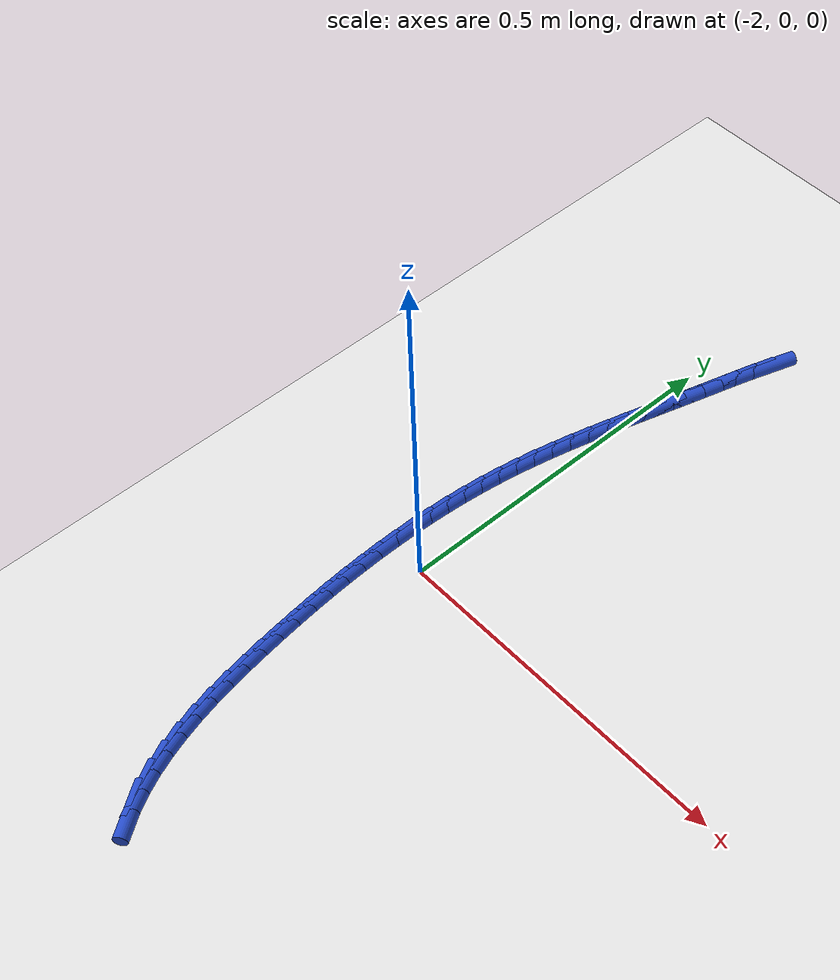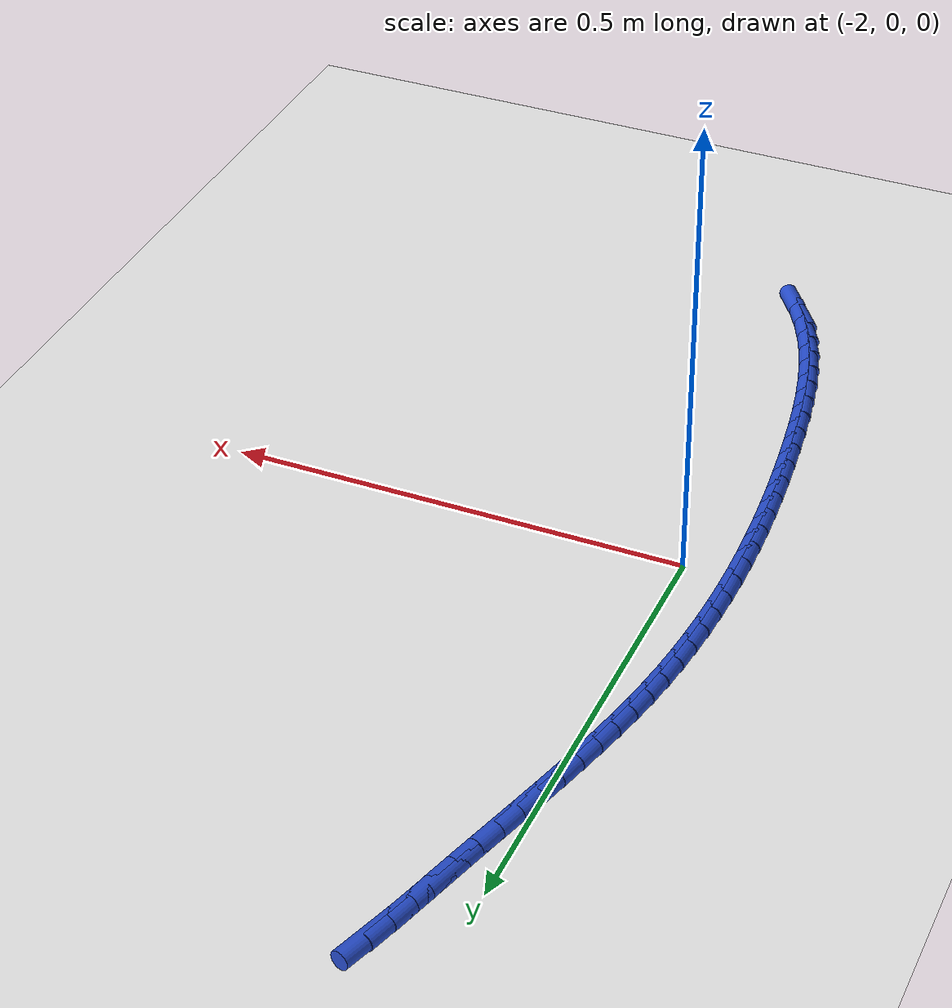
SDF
<sdf version="1.6">
 <world name="default">
  <model name="ground_plane">
   <static>1</static>
   <link name="link">
    <collision name="collision">
     <geometry><plane><normal>0 0 1</normal><size>100 100</size></plane></geometry>
     <surface><friction><ode><mu>100</mu><mu2>50</mu2></ode></friction></surface>
    </collision>
    <visual name="visual">
     <cast_shadows>0</cast_shadows>
     <geometry><plane><normal>0 0 1</normal><size>100 100</size></plane></geometry>
     <material>
      <script><uri>file://media/materials/scripts/gazebo.material</uri><name>Gazebo/WhiteGlow</name></script>
     </material>
    </visual>
   </link>
  </model>
  <model name="line">
   <link name="link_95">
    <pose>-1.9344998018746433 0.5902073375760196 0.01 0 1.57 1.254535012141452</pose>
    <collision name="collision">
     <geometry><cylinder><radius>0.01</radius><length>0.08</length></cylinder></geometry>
    </collision>
    <visual name="visual">
     <material>
      <script><name>Gazebo/Blue</name><uri>file://media/materials/scripts/gazebo.material</uri></script>
     </material>
     <geometry><cylinder><radius>0.01</radius><length>0.08</length></cylinder></geometry>
    </visual>
   </link>
   <link name="link_96">
    <pose>-1.9435953468730802 0.5624130615206323 0.01 0 1.57 1.2808719550416707</pose>
    <collision name="collision">
     <geometry><cylinder><radius>0.01</radius><length>0.08</length></cylinder></geometry>
    </collision>
    <visual name="visual">
     <material>
      <script><name>Gazebo/Blue</name><uri>file://media/materials/scripts/gazebo.material</uri></script>
     </material>
     <geometry><cylinder><radius>0.01</radius><length>0.08</length></cylinder></geometry>
    </visual>
   </link>
   <link name="link_97">
    <pose>-1.9520296461643625 0.5341413916835575 0.01 0 1.57 1.2942587560403869</pose>
    <collision name="collision">
     <geometry><cylinder><radius>0.01</radius><length>0.08</length></cylinder></geometry>
    </collision>
    <visual name="visual">
     <material>
      <script><name>Gazebo/Blue</name><uri>file://media/materials/scripts/gazebo.material</uri></script>
     </material>
     <geometry><cylinder><radius>0.01</radius><length>0.08</length></cylinder></geometry>
    </visual>
   </link>
   <link name="link_98">
    <pose>-1.9601114194759017 0.5056653233900984 0.01 0 1.57 1.2952131187065052</pose>
    <collision name="collision">
     <geometry><cylinder><radius>0.01</radius><length>0.08</length></cylinder></geometry>
    </collision>
    <visual name="visual">
     <material>
      <script><name>Gazebo/Blue</name><uri>file://media/materials/scripts/gazebo.material</uri></script>
     </material>
     <geometry><cylinder><radius>0.01</radius><length>0.08</length></cylinder></geometry>
    </visual>
   </link>
   <link name="link_99">
    <pose>-1.9681453239502498 0.4772547172447407 0.01 0 1.57 1.2901808839835676</pose>
    <collision name="collision">
     <geometry><cylinder><radius>0.01</radius><length>0.08</length></cylinder></geometry>
    </collision>
    <visual name="visual">
     <material>
      <script><name>Gazebo/Blue</name><uri>file://media/materials/scripts/gazebo.material</uri></script>
     </material>
     <geometry><cylinder><radius>0.01</radius><length>0.08</length></cylinder></geometry>
    </visual>
   </link>
   <link name="link_100">
    <pose>-1.9762733744664538 0.44905393786676234 0.01 0 1.57 1.2876578709535933</pose>
    <collision name="collision">
     <geometry><cylinder><radius>0.01</radius><length>0.08</length></cylinder></geometry>
    </collision>
    <visual name="visual">
     <material>
      <script><name>Gazebo/Blue</name><uri>file://media/materials/scripts/gazebo.material</uri></script>
     </material>
     <geometry><cylinder><radius>0.01</radius><length>0.08</length></cylinder></geometry>
    </visual>
   </link>
   <link name="link_101">
    <pose>-1.9844235423572956 0.4210421922765682 0.01 0 1.57 1.288280962994664</pose>
    <collision name="collision">
     <geometry><cylinder><radius>0.01</radius><length>0.08</length></cylinder></geometry>
    </collision>
    <visual name="visual">
     <material>
      <script><name>Gazebo/Blue</name><uri>file://media/materials/scripts/gazebo.material</uri></script>
     </material>
     <geometry><cylinder><radius>0.01</radius><length>0.08</length></cylinder></geometry>
    </visual>
   </link>
   <link name="link_102">
    <pose>-1.9925092124512216 0.3931874324388796 0.01 0 1.57 1.292104933015908</pose>
    <collision name="collision">
     <geometry><cylinder><radius>0.01</radius><length>0.08</length></cylinder></geometry>
    </collision>
    <visual name="visual">
     <material>
      <script><name>Gazebo/Blue</name><uri>file://media/materials/scripts/gazebo.material</uri></script>
     </material>
     <geometry><cylinder><radius>0.01</radius><length>0.08</length></cylinder></geometry>
    </visual>
   </link>
   <link name="link_103">
    <pose>-2.000443769576679 0.3654576103184168 0.01 0 1.57 1.2991810181899923</pose>
    <collision name="collision">
     <geometry><cylinder><radius>0.01</radius><length>0.08</length></cylinder></geometry>
    </collision>
    <visual name="visual">
     <material>
      <script><name>Gazebo/Blue</name><uri>file://media/materials/scripts/gazebo.material</uri></script>
     </material>
     <geometry><cylinder><radius>0.01</radius><length>0.08</length></cylinder></geometry>
    </visual>
   </link>
   <link name="link_104">
    <pose>-2.0081405985621137 0.33782067787990083 0.01 0 1.57 1.309555474394665</pose>
    <collision name="collision">
     <geometry><cylinder><radius>0.01</radius><length>0.08</length></cylinder></geometry>
    </collision>
    <visual name="visual">
     <material>
      <script><name>Gazebo/Blue</name><uri>file://media/materials/scripts/gazebo.material</uri></script>
     </material>
     <geometry><cylinder><radius>0.01</radius><length>0.08</length></cylinder></geometry>
    </visual>
   </link>
   <link name="link_105">
    <pose>-2.015513084235972 0.31024458708805186 0.01 0 1.57 1.3232670097337669</pose>
    <collision name="collision">
     <geometry><cylinder><radius>0.01</radius><length>0.08</length></cylinder></geometry>
    </collision>
    <visual name="visual">
     <material>
      <script><name>Gazebo/Blue</name><uri>file://media/materials/scripts/gazebo.material</uri></script>
     </material>
     <geometry><cylinder><radius>0.01</radius><length>0.08</length></cylinder></geometry>
    </visual>
   </link>
   <link name="link_106">
    <pose>-2.0224746114267 0.2826972899075911 0.01 0 1.57 1.3403430262106866</pose>
    <collision name="collision">
     <geometry><cylinder><radius>0.01</radius><length>0.08</length></cylinder></geometry>
    </collision>
    <visual name="visual">
     <material>
      <script><name>Gazebo/Blue</name><uri>file://media/materials/scripts/gazebo.material</uri></script>
     </material>
     <geometry><cylinder><radius>0.01</radius><length>0.08</length></cylinder></geometry>
    </visual>
   </link>
   <link name="link_107">
    <pose>-2.0289385649627443 0.255146738303239 0.01 0 1.57 1.3607946504472843</pose>
    <collision name="collision">
     <geometry><cylinder><radius>0.01</radius><length>0.08</length></cylinder></geometry>
    </collision>
    <visual name="visual">
     <material>
      <script><name>Gazebo/Blue</name><uri>file://media/materials/scripts/gazebo.material</uri></script>
     </material>
     <geometry><cylinder><radius>0.01</radius><length>0.08</length></cylinder></geometry>
    </visual>
   </link>
   <link name="link_108">
    <pose>-2.034818329672552 0.2275608842397157 0.01 0 1.57 1.384610621005117</pose>
    <collision name="collision">
     <geometry><cylinder><radius>0.01</radius><length>0.08</length></cylinder></geometry>
    </collision>
    <visual name="visual">
     <material>
      <script><name>Gazebo/Blue</name><uri>file://media/materials/scripts/gazebo.material</uri></script>
     </material>
     <geometry><cylinder><radius>0.01</radius><length>0.08</length></cylinder></geometry>
    </visual>
   </link>
   <link name="link_109">
    <pose>-2.0400272903845673 0.19990767968174253 0.01 0 1.57 1.411507171719653</pose>
    <collision name="collision">
     <geometry><cylinder><radius>0.01</radius><length>0.08</length></cylinder></geometry>
    </collision>
    <visual name="visual">
     <material>
      <script><name>Gazebo/Blue</name><uri>file://media/materials/scripts/gazebo.material</uri></script>
     </material>
     <geometry><cylinder><radius>0.01</radius><length>0.08</length></cylinder></geometry>
    </visual>
   </link>
   <link name="link_110">
    <pose>-2.0444854852087286 0.1721567326138659 0.01 0 1.57 1.4389919504511146</pose>
    <collision name="collision">
     <geometry><cylinder><radius>0.01</radius><length>0.08</length></cylinder></geometry>
    </collision>
    <visual name="visual">
     <material>
      <script><name>Gazebo/Blue</name><uri>file://media/materials/scripts/gazebo.material</uri></script>
     </material>
     <geometry><cylinder><radius>0.01</radius><length>0.08</length></cylinder></geometry>
    </visual>
   </link>
   <link name="link_111">
    <pose>-2.048179308261989 0.14429416721093571 0.01 0 1.57 1.4656067713556822</pose>
    <collision name="collision">
     <geometry><cylinder><radius>0.01</radius><length>0.08</length></cylinder></geometry>
    </collision>
    <visual name="visual">
     <material>
      <script><name>Gazebo/Blue</name><uri>file://media/materials/scripts/gazebo.material</uri></script>
     </material>
     <geometry><cylinder><radius>0.01</radius><length>0.08</length></cylinder></geometry>
    </visual>
   </link>
   <link name="link_112">
    <pose>-2.051133265041683 0.1163155936738483 0.01 0 1.57 1.4912796148930052</pose>
    <collision name="collision">
     <geometry><cylinder><radius>0.01</radius><length>0.08</length></cylinder></geometry>
    </collision>
    <visual name="visual">
     <material>
      <script><name>Gazebo/Blue</name><uri>file://media/materials/scripts/gazebo.material</uri></script>
     </material>
     <geometry><cylinder><radius>0.01</radius><length>0.08</length></cylinder></geometry>
    </visual>
   </link>
   <link name="link_113">
    <pose>-2.053372314969068 0.08821673518639908 0.01 0 1.57 1.51596421640202</pose>
    <collision name="collision">
     <geometry><cylinder><radius>0.01</radius><length>0.08</length></cylinder></geometry>
    </collision>
    <visual name="visual">
     <material>
      <script><name>Gazebo/Blue</name><uri>file://media/materials/scripts/gazebo.material</uri></script>
     </material>
     <geometry><cylinder><radius>0.01</radius><length>0.08</length></cylinder></geometry>
    </visual>
   </link>
   <link name="link_114">
    <pose>-2.0549214174654047 0.05999331493238186 0.01 0 1.57 1.5396232167477288</pose>
    <collision name="collision">
     <geometry><cylinder><radius>0.01</radius><length>0.08</length></cylinder></geometry>
    </collision>
    <visual name="visual">
     <material>
      <script><name>Gazebo/Blue</name><uri>file://media/materials/scripts/gazebo.material</uri></script>
     </material>
     <geometry><cylinder><radius>0.01</radius><length>0.08</length></cylinder></geometry>
    </visual>
   </link>
   <link name="link_115">
    <pose>-2.0558055319519513 0.03164105609559186 0.01 0 1.57 1.5622277216472842</pose>
    <collision name="collision">
     <geometry><cylinder><radius>0.01</radius><length>0.08</length></cylinder></geometry>
    </collision>
    <visual name="visual">
     <material>
      <script><name>Gazebo/Blue</name><uri>file://media/materials/scripts/gazebo.material</uri></script>
     </material>
     <geometry><cylinder><radius>0.01</radius><length>0.08</length></cylinder></geometry>
    </visual>
   </link>
   <link name="link_116">
    <pose>-2.056049617849965 0.003155681859823331 0.01 0 1.57 -1.5578359269654085</pose>
    <collision name="collision">
     <geometry><cylinder><radius>0.01</radius><length>0.08</length></cylinder></geometry>
    </collision>
    <visual name="visual">
     <material>
      <script><name>Gazebo/Blue</name><uri>file://media/materials/scripts/gazebo.material</uri></script>
     </material>
     <geometry><cylinder><radius>0.01</radius><length>0.08</length></cylinder></geometry>
    </visual>
   </link>
   <link name="link_117">
    <pose>-2.055678634580706 -0.025467084591129983 0.01 0 1.57 -1.5373962066684832</pose>
    <collision name="collision">
     <geometry><cylinder><radius>0.01</radius><length>0.08</length></cylinder></geometry>
    </collision>
    <visual name="visual">
     <material>
      <script><name>Gazebo/Blue</name><uri>file://media/materials/scripts/gazebo.material</uri></script>
     </material>
     <geometry><cylinder><radius>0.01</radius><length>0.08</length></cylinder></geometry>
    </visual>
   </link>
   <link name="link_118">
    <pose>-2.054717541565433 -0.05423152007347204 0.01 0 1.57 -1.5180530648081776</pose>
    <collision name="collision">
     <geometry><cylinder><radius>0.01</radius><length>0.08</length></cylinder></geometry>
    </collision>
    <visual name="visual">
     <material>
      <script><name>Gazebo/Blue</name><uri>file://media/materials/scripts/gazebo.material</uri></script>
     </material>
     <geometry><cylinder><radius>0.01</radius><length>0.08</length></cylinder></geometry>
    </visual>
   </link>
   <link name="link_119">
    <pose>-2.053191298225404 -0.08314190140340899 0.01 0 1.57 -1.4998080594344998</pose>
    <collision name="collision">
     <geometry><cylinder><radius>0.01</radius><length>0.08</length></cylinder></geometry>
    </collision>
    <visual name="visual">
     <material>
      <script><name>Gazebo/Blue</name><uri>file://media/materials/scripts/gazebo.material</uri></script>
     </material>
     <geometry><cylinder><radius>0.01</radius><length>0.08</length></cylinder></geometry>
    </visual>
   </link>
   <link name="link_120">
    <pose>-2.0511248639818778 -0.11220250539714634 0.01 0 1.57 -1.4826577678749202</pose>
    <collision name="collision">
     <geometry><cylinder><radius>0.01</radius><length>0.08</length></cylinder></geometry>
    </collision>
    <visual name="visual">
     <material>
      <script><name>Gazebo/Blue</name><uri>file://media/materials/scripts/gazebo.material</uri></script>
     </material>
     <geometry><cylinder><radius>0.01</radius><length>0.08</length></cylinder></geometry>
    </visual>
   </link>
   <link name="link_121">
    <pose>-2.048543198256114 -0.14141760887088953 0.01 0 1.57 -1.4665945199390988</pose>
    <collision name="collision">
     <geometry><cylinder><radius>0.01</radius><length>0.08</length></cylinder></geometry>
    </collision>
    <visual name="visual">
     <material>
      <script><name>Gazebo/Blue</name><uri>file://media/materials/scripts/gazebo.material</uri></script>
     </material>
     <geometry><cylinder><radius>0.01</radius><length>0.08</length></cylinder></geometry>
    </visual>
   </link>
   <link name="link_122">
    <pose>-2.04547126046937 -0.17079148864084473 0.01 0 1.57 -1.4516070931333818</pose>
    <collision name="collision">
     <geometry><cylinder><radius>0.01</radius><length>0.08</length></cylinder></geometry>
    </collision>
    <visual name="visual">
     <material>
      <script><name>Gazebo/Blue</name><uri>file://media/materials/scripts/gazebo.material</uri></script>
     </material>
     <geometry><cylinder><radius>0.01</radius><length>0.08</length></cylinder></geometry>
    </visual>
   </link>
   <link name="link_123">
    <pose>-2.041934010042906 -0.20032842152321595 0.01 0 1.57 -1.4376652138767</pose>
    <collision name="collision">
     <geometry><cylinder><radius>0.01</radius><length>0.08</length></cylinder></geometry>
    </collision>
    <visual name="visual">
     <material>
      <script><name>Gazebo/Blue</name><uri>file://media/materials/scripts/gazebo.material</uri></script>
     </material>
     <geometry><cylinder><radius>0.01</radius><length>0.08</length></cylinder></geometry>
    </visual>
   </link>
   <link name="link_124">
    <pose>-2.0379559741610938 -0.2300322667315771 0.01 0 1.57 -1.422563321202828</pose>
    <collision name="collision">
     <geometry><cylinder><radius>0.01</radius><length>0.08</length></cylinder></geometry>
    </collision>
    <visual name="visual">
     <material>
      <script><name>Gazebo/Blue</name><uri>file://media/materials/scripts/gazebo.material</uri></script>
     </material>
     <geometry><cylinder><radius>0.01</radius><length>0.08</length></cylinder></geometry>
    </visual>
   </link>
   <link name="link_125">
    <pose>-2.0335032735898184 -0.259850454528365 0.01 0 1.57 -1.4018275491865546</pose>
    <collision name="collision">
     <geometry><cylinder><radius>0.01</radius><length>0.08</length></cylinder></geometry>
    </collision>
    <visual name="visual">
     <material>
      <script><name>Gazebo/Blue</name><uri>file://media/materials/scripts/gazebo.material</uri></script>
     </material>
     <geometry><cylinder><radius>0.01</radius><length>0.08</length></cylinder></geometry>
    </visual>
   </link>
   <link name="link_126">
    <pose>-2.0284251531543607 -0.28961749630662015 0.01 0 1.57 -1.3746763664666124</pose>
    <collision name="collision">
     <geometry><cylinder><radius>0.01</radius><length>0.08</length></cylinder></geometry>
    </collision>
    <visual name="visual">
     <material>
      <script><name>Gazebo/Blue</name><uri>file://media/materials/scripts/gazebo.material</uri></script>
     </material>
     <geometry><cylinder><radius>0.01</radius><length>0.08</length></cylinder></geometry>
    </visual>
   </link>
   <link name="link_127">
    <pose>-2.022556936200227 -0.3191544533194412 0.01 0 1.57 -1.3407026638779673</pose>
    <collision name="collision">
     <geometry><cylinder><radius>0.01</radius><length>0.08</length></cylinder></geometry>
    </collision>
    <visual name="visual">
     <material>
      <script><name>Gazebo/Blue</name><uri>file://media/materials/scripts/gazebo.material</uri></script>
     </material>
     <geometry><cylinder><radius>0.01</radius><length>0.08</length></cylinder></geometry>
    </visual>
   </link>
   <link name="link_128">
    <pose>-2.0157339460729204 -0.34828238681992907 0.01 0 1.57 -1.2993723390396774</pose>
    <collision name="collision">
     <geometry><cylinder><radius>0.01</radius><length>0.08</length></cylinder></geometry>
    </collision>
    <visual name="visual">
     <material>
      <script><name>Gazebo/Blue</name><uri>file://media/materials/scripts/gazebo.material</uri></script>
     </material>
     <geometry><cylinder><radius>0.01</radius><length>0.08</length></cylinder></geometry>
    </visual>
   </link>
   <link name="link_129">
    <pose>-2.0077915061179485 -0.37682235806118414 0.01 0 1.57 -1.250054688147053</pose>
    <collision name="collision">
     <geometry><cylinder><radius>0.01</radius><length>0.08</length></cylinder></geometry>
    </collision>
    <visual name="visual">
     <material>
      <script><name>Gazebo/Blue</name><uri>file://media/materials/scripts/gazebo.material</uri></script>
     </material>
     <geometry><cylinder><radius>0.01</radius><length>0.08</length></cylinder></geometry>
    </visual>
   </link>
   <link name="link_130">
    <pose>-1.998564939680816 -0.40459542829630657 0.01 0 1.57 -1.1920753915127982</pose>
    <collision name="collision">
     <geometry><cylinder><radius>0.01</radius><length>0.08</length></cylinder></geometry>
    </collision>
    <visual name="visual">
     <material>
      <script><name>Gazebo/Blue</name><uri>file://media/materials/scripts/gazebo.material</uri></script>
     </material>
     <geometry><cylinder><radius>0.01</radius><length>0.08</length></cylinder></geometry>
    </visual>
   </link>
   <link name="link_131">
    <pose>-1.9878895701070274 -0.43142265877839714 0.01 0 1.57 -1.124805651229036</pose>
    <collision name="collision">
     <geometry><cylinder><radius>0.01</radius><length>0.08</length></cylinder></geometry>
    </collision>
    <visual name="visual">
     <material>
      <script><name>Gazebo/Blue</name><uri>file://media/materials/scripts/gazebo.material</uri></script>
     </material>
     <geometry><cylinder><radius>0.01</radius><length>0.08</length></cylinder></geometry>
    </visual>
   </link>
   <link name="link_132">
    <pose>-1.9756007207420887 -0.45712511076055473 0.01 0 1.57 -1.0478005665345935</pose>
    <collision name="collision">
     <geometry><cylinder><radius>0.01</radius><length>0.08</length></cylinder></geometry>
    </collision>
    <visual name="visual">
     <material>
      <script><name>Gazebo/Blue</name><uri>file://media/materials/scripts/gazebo.material</uri></script>
     </material>
     <geometry><cylinder><radius>0.01</radius><length>0.08</length></cylinder></geometry>
    </visual>
   </link>
   <link name="link_133">
    <pose>-1.9615337149315049 -0.4815238454958802 0.01 0 1.57 -0.960991038513805</pose>
    <collision name="collision">
     <geometry><cylinder><radius>0.01</radius><length>0.08</length></cylinder></geometry>
    </collision>
    <visual name="visual">
     <material>
      <script><name>Gazebo/Blue</name><uri>file://media/materials/scripts/gazebo.material</uri></script>
     </material>
     <geometry><cylinder><radius>0.01</radius><length>0.08</length></cylinder></geometry>
    </visual>
   </link>
  </model>
 </world>
</sdf>
